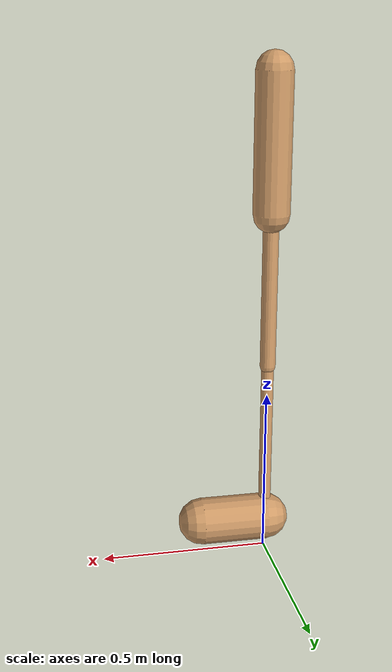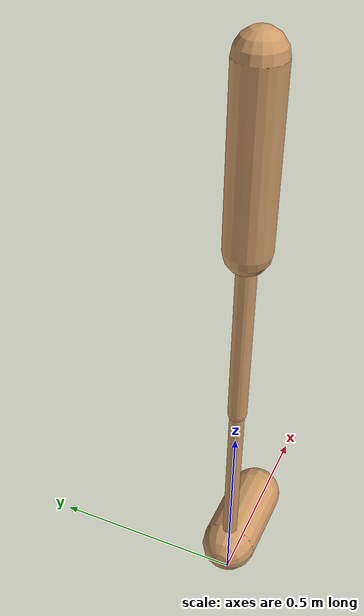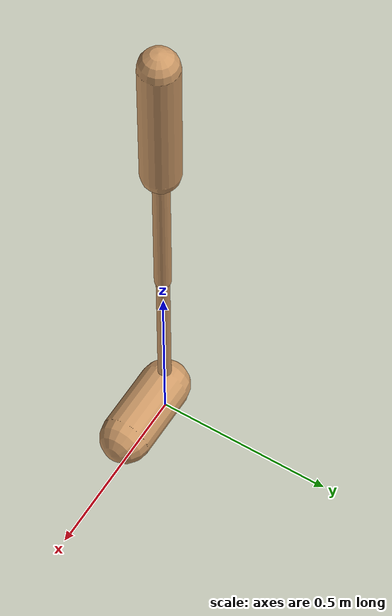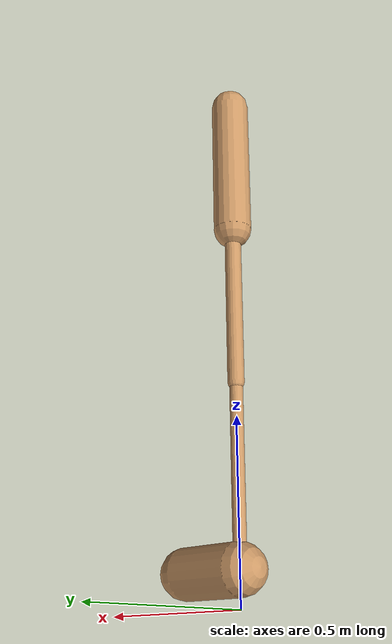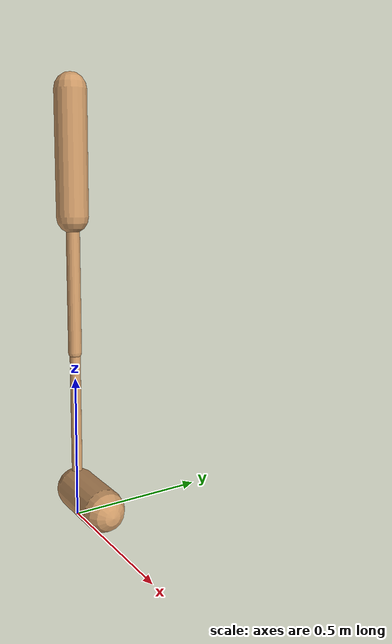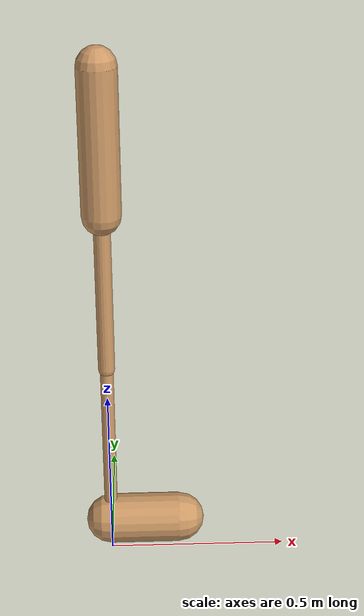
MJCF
<mujoco model="walker2d">
  <compiler angle="degree" coordinate="global" inertiafromgeom="true" />
  <default>
    <joint armature="0.01" damping=".1" limited="true" />
    <geom conaffinity="0" condim="3" contype="1" density="1000" friction="0.8 .1 .1" rgba="0.8 0.6 .4 1" />
  </default>
  <option integrator="RK4" timestep="0.002" />
  <worldbody>

    <body name="torso" pos="0 0 0.012837675769214123">
      <joint armature="0" axis="1 0 0" damping="0" limited="false" name="ignorex" pos="0 0 0" stiffness="0" type="slide" />
      <joint armature="0" axis="0 0 1" damping="0" limited="false" name="ignorez" pos="0 0 0" ref="1.25" stiffness="0" type="slide" />
      <joint armature="0" axis="0 1 0" damping="0" limited="false" name="ignorey" pos="0 0 0" stiffness="0" type="hinge" />
      <geom fromto="0 0 1.45 0 0 1.05" name="torso_geom" size="0.05349389669226262" type="capsule" />
      <body name="thigh">
        <joint axis="0 -1 0" name="thigh_joint" pos="0 0 1.05" range="-150 0" type="hinge" />
        <geom fromto="0.0 0.0 1.05 0.0 0.0 0.593918995688267" name="thigh_geom" size="0.022957295881034175" type="capsule" />
        <body name="leg" pos="0.0 0.0 -0.006081004311732974">
          <joint axis="0 -1 0" name="leg_joint" pos="0 0 0.6" range="-150 0" type="hinge" />
          <geom fromto="0.0 0.0 0.6 0.0 0.0 0.09324332854251889" name="leg_geom" size="0.01836583670482734" type="capsule" />
          <body name="foot" pos="0.0 0.0 -0.006756671457481114">
            <joint axis="0 -1 0" name="foot_joint" pos="0 0 0.1" range="-45 45" type="hinge" />
            <geom fromto="0.0 0.0 0.1 0.196881096380658 0.0 0.1" name="foot_geom" size="0.07096051696244512" type="capsule" />
          </body>
        </body>
      </body>

      <body name="thigh_left">
        <joint axis="0 -1 0" name="thigh_left_joint" pos="0 0 1.05" range="-150 0" type="hinge" />
        <geom fromto="0.0 0.0 1.05 0.0 0.0 0.593918995688267" name="thigh_left_geom" rgba=".7 .3 .6 1" size="0.022957295881034175" type="capsule" />
        <body name="leg_left" pos="0.0 0.0 -0.006081004311732974">
          <joint axis="0 -1 0" name="leg_left_joint" pos="0 0 0.6" range="-150 0" type="hinge" />
          <geom fromto="0.0 0.0 0.6 0.0 0.0 0.09324332854251889" name="leg_left_geom" rgba=".7 .3 .6 1" size="0.01836583670482734" type="capsule" />
          <body name="foot_left" pos="0.0 0.0 -0.006756671457481114">
            <joint axis="0 -1 0" name="foot_left_joint" pos="0 0 0.1" range="-45 45" type="hinge" />
            <geom fromto="0.0 0.0 0.1 0.196881096380658 0.0 0.1" name="foot_left_geom" rgba=".7 .3 .6 1" size="0.07096051696244512" type="capsule" />
          </body>
        </body>
      </body>
    </body>
  </worldbody>
  <actuator>

    <motor ctrllimited="true" ctrlrange="-1.0 1.0" gear="100" joint="thigh_joint" />
    <motor ctrllimited="true" ctrlrange="-1.0 1.0" gear="100" joint="leg_joint" />
    <motor ctrllimited="true" ctrlrange="-1.0 1.0" gear="100" joint="foot_joint" />
    <motor ctrllimited="true" ctrlrange="-1.0 1.0" gear="100" joint="thigh_left_joint" />
    <motor ctrllimited="true" ctrlrange="-1.0 1.0" gear="100" joint="leg_left_joint" />
    <motor ctrllimited="true" ctrlrange="-1.0 1.0" gear="100" joint="foot_left_joint" />

  </actuator>
</mujoco>
